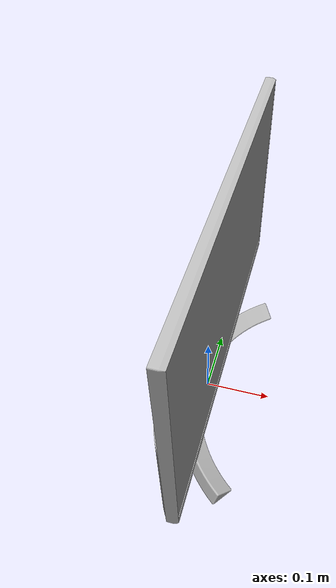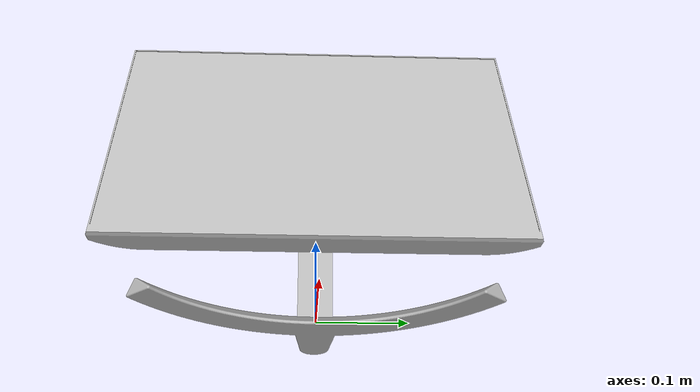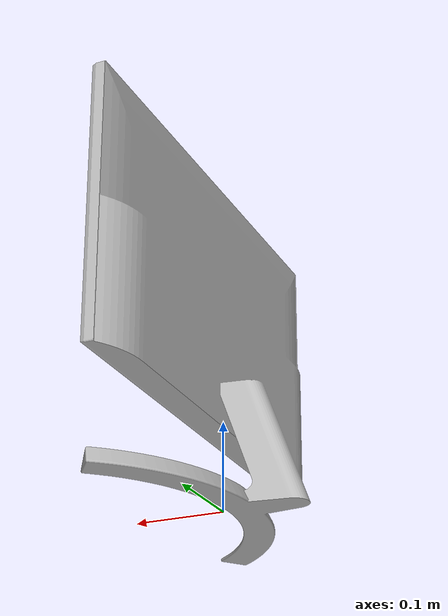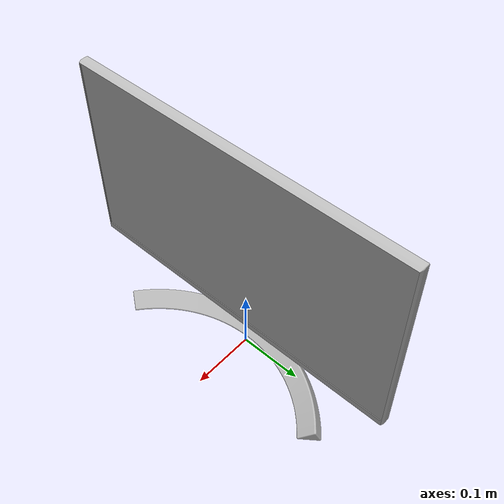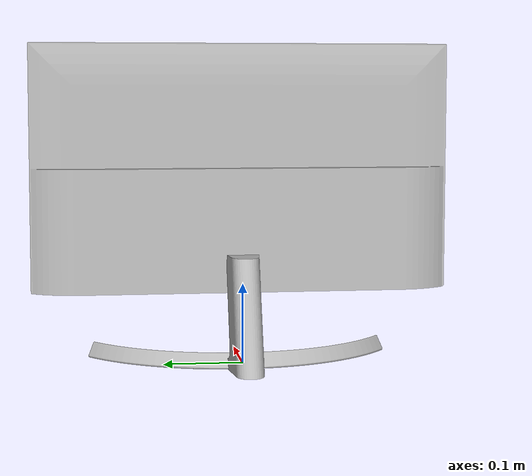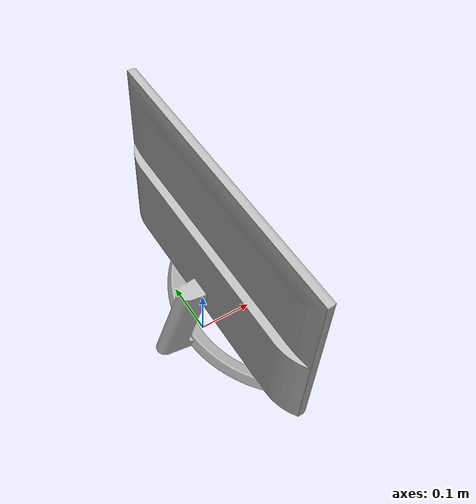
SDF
<sdf version='1.5'>
  <!-- Draw Model -->
  <model name="LGmonitor_1">
    <static>true</static>
    <link name="LGmonitor_1">
      <collision name="collision">
        <geometry>
          <mesh>
            <uri>model://LGmonitor_1/meshes/STL/LGmonitor.stl</uri>
          </mesh>
        </geometry>
      </collision>

      <visual name="visual">
        <geometry>
          <mesh>
            <uri>model://LGmonitor_1/meshes/DAE/LGmonitor.dae</uri>
          </mesh>
        </geometry>
      </visual>
    </link>
  </model>
</sdf>
